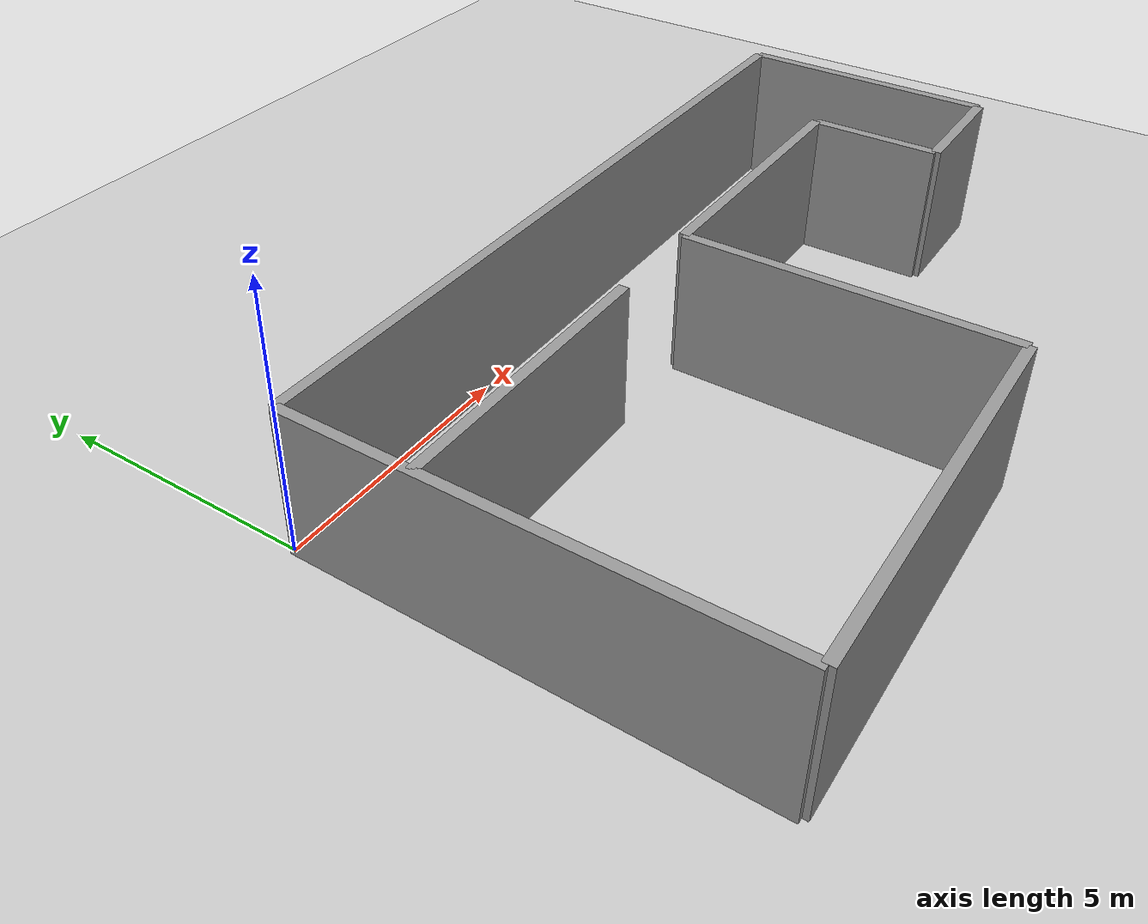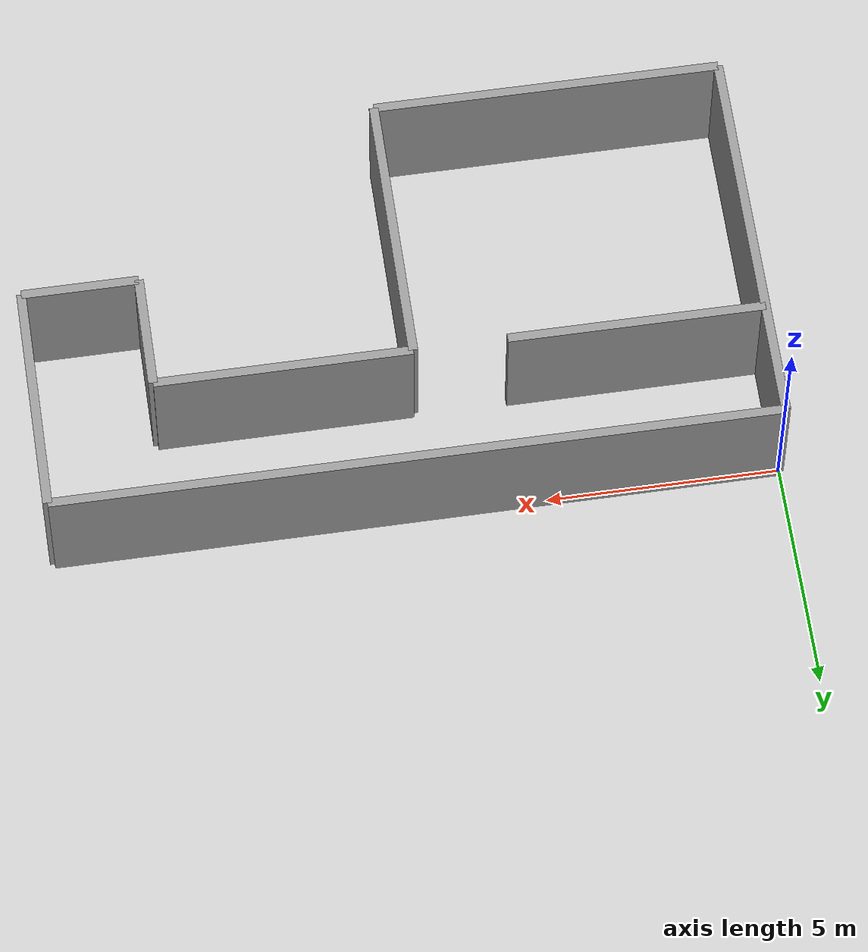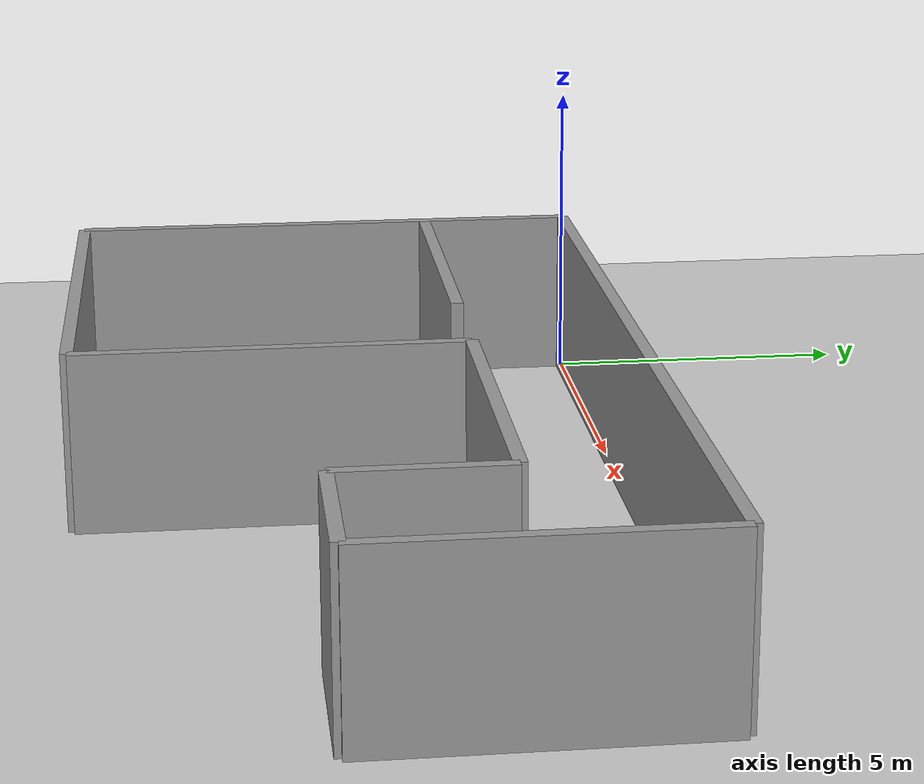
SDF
<?xml version="1.0" ?>

    <!-- this file is auto generated using pedsim_gazebo_plugin pkg -->
    <sdf version="1.5">
      <world name="default">

      <!-- Ground Plane -->

      <include>
        <uri>model://ground_plane</uri>
      </include>

      <include>
        <uri>model://sun</uri>
      </include>

     <model name='grey_wall_1'>
      <static>1</static>
      <link name='link'>

	  <pose frame=''>0.0 -4.25  1.4 0 0 1.57</pose>

        <collision name='collision'>
          <geometry>
            <box>

	     <size> 8.5 .2  2.8 </size>

      	   </box>
          </geometry>
          <max_contacts>10</max_contacts>
          <surface>
            <contact>
              <ode/>
            </contact>
            <bounce/>
            <friction>
              <torsional>
                <ode/>
              </torsional>
              <ode/>
            </friction>
          </surface>
        </collision>
        <visual name='visual'>
          <cast_shadows>0</cast_shadows>
          <geometry>
            <box>

	     <size> 8.5 .2  2.8 </size>

      	   </box>
       </geometry>
          <material>
            <script>
              <uri>model://grey_wall/materials/scripts</uri>
              <uri>model://grey_wall/materials/textures</uri>
              <name>vrc/grey_wall</name>
            </script>
          </material>
        </visual>
        <self_collide>0</self_collide>
        <enable_wind>0</enable_wind>
        <kinematic>0</kinematic>
      </link>
    </model>

     <model name='grey_wall_2'>
      <static>1</static>
      <link name='link'>

	  <pose frame=''>3.75 -8.5  1.4 0 0 0.0</pose>

        <collision name='collision'>
          <geometry>
            <box>

	     <size> 7.5 .2  2.8 </size>

      	   </box>
          </geometry>
          <max_contacts>10</max_contacts>
          <surface>
            <contact>
              <ode/>
            </contact>
            <bounce/>
            <friction>
              <torsional>
                <ode/>
              </torsional>
              <ode/>
            </friction>
          </surface>
        </collision>
        <visual name='visual'>
          <cast_shadows>0</cast_shadows>
          <geometry>
            <box>

	     <size> 7.5 .2  2.8 </size>

      	   </box>
       </geometry>
          <material>
            <script>
              <uri>model://grey_wall/materials/scripts</uri>
              <uri>model://grey_wall/materials/textures</uri>
              <name>vrc/grey_wall</name>
            </script>
          </material>
        </visual>
        <self_collide>0</self_collide>
        <enable_wind>0</enable_wind>
        <kinematic>0</kinematic>
      </link>
    </model>

     <model name='grey_wall_3'>
      <static>1</static>
      <link name='link'>

	  <pose frame=''>7.5 -5.5  1.4 0 0 1.57</pose>

        <collision name='collision'>
          <geometry>
            <box>

	     <size> 6.0 .2  2.8 </size>

      	   </box>
          </geometry>
          <max_contacts>10</max_contacts>
          <surface>
            <contact>
              <ode/>
            </contact>
            <bounce/>
            <friction>
              <torsional>
                <ode/>
              </torsional>
              <ode/>
            </friction>
          </surface>
        </collision>
        <visual name='visual'>
          <cast_shadows>0</cast_shadows>
          <geometry>
            <box>

	     <size> 6.0 .2  2.8 </size>

      	   </box>
       </geometry>
          <material>
            <script>
              <uri>model://grey_wall/materials/scripts</uri>
              <uri>model://grey_wall/materials/textures</uri>
              <name>vrc/grey_wall</name>
            </script>
          </material>
        </visual>
        <self_collide>0</self_collide>
        <enable_wind>0</enable_wind>
        <kinematic>0</kinematic>
      </link>
    </model>

     <model name='grey_wall_4'>
      <static>1</static>
      <link name='link'>

	  <pose frame=''>10.25 -2.5  1.4 0 0 0.0</pose>

        <collision name='collision'>
          <geometry>
            <box>

	     <size> 5.5 .2  2.8 </size>

      	   </box>
          </geometry>
          <max_contacts>10</max_contacts>
          <surface>
            <contact>
              <ode/>
            </contact>
            <bounce/>
            <friction>
              <torsional>
                <ode/>
              </torsional>
              <ode/>
            </friction>
          </surface>
        </collision>
        <visual name='visual'>
          <cast_shadows>0</cast_shadows>
          <geometry>
            <box>

	     <size> 5.5 .2  2.8 </size>

      	   </box>
       </geometry>
          <material>
            <script>
              <uri>model://grey_wall/materials/scripts</uri>
              <uri>model://grey_wall/materials/textures</uri>
              <name>vrc/grey_wall</name>
            </script>
          </material>
        </visual>
        <self_collide>0</self_collide>
        <enable_wind>0</enable_wind>
        <kinematic>0</kinematic>
      </link>
    </model>

     <model name='grey_wall_5'>
      <static>1</static>
      <link name='link'>

	  <pose frame=''>13.0 -3.75  1.4 0 0 1.57</pose>

        <collision name='collision'>
          <geometry>
            <box>

	     <size> 2.5 .2  2.8 </size>

      	   </box>
          </geometry>
          <max_contacts>10</max_contacts>
          <surface>
            <contact>
              <ode/>
            </contact>
            <bounce/>
            <friction>
              <torsional>
                <ode/>
              </torsional>
              <ode/>
            </friction>
          </surface>
        </collision>
        <visual name='visual'>
          <cast_shadows>0</cast_shadows>
          <geometry>
            <box>

	     <size> 2.5 .2  2.8 </size>

      	   </box>
       </geometry>
          <material>
            <script>
              <uri>model://grey_wall/materials/scripts</uri>
              <uri>model://grey_wall/materials/textures</uri>
              <name>vrc/grey_wall</name>
            </script>
          </material>
        </visual>
        <self_collide>0</self_collide>
        <enable_wind>0</enable_wind>
        <kinematic>0</kinematic>
      </link>
    </model>

     <model name='grey_wall_6'>
      <static>1</static>
      <link name='link'>

	  <pose frame=''>14.25 -5.0  1.4 0 0 0.0</pose>

        <collision name='collision'>
          <geometry>
            <box>

	     <size> 2.5 .2  2.8 </size>

      	   </box>
          </geometry>
          <max_contacts>10</max_contacts>
          <surface>
            <contact>
              <ode/>
            </contact>
            <bounce/>
            <friction>
              <torsional>
                <ode/>
              </torsional>
              <ode/>
            </friction>
          </surface>
        </collision>
        <visual name='visual'>
          <cast_shadows>0</cast_shadows>
          <geometry>
            <box>

	     <size> 2.5 .2  2.8 </size>

      	   </box>
       </geometry>
          <material>
            <script>
              <uri>model://grey_wall/materials/scripts</uri>
              <uri>model://grey_wall/materials/textures</uri>
              <name>vrc/grey_wall</name>
            </script>
          </material>
        </visual>
        <self_collide>0</self_collide>
        <enable_wind>0</enable_wind>
        <kinematic>0</kinematic>
      </link>
    </model>

     <model name='grey_wall_7'>
      <static>1</static>
      <link name='link'>

	  <pose frame=''>15.5 -2.5  1.4 0 0 1.57</pose>

        <collision name='collision'>
          <geometry>
            <box>

	     <size> 5.0 .2  2.8 </size>

      	   </box>
          </geometry>
          <max_contacts>10</max_contacts>
          <surface>
            <contact>
              <ode/>
            </contact>
            <bounce/>
            <friction>
              <torsional>
                <ode/>
              </torsional>
              <ode/>
            </friction>
          </surface>
        </collision>
        <visual name='visual'>
          <cast_shadows>0</cast_shadows>
          <geometry>
            <box>

	     <size> 5.0 .2  2.8 </size>

      	   </box>
       </geometry>
          <material>
            <script>
              <uri>model://grey_wall/materials/scripts</uri>
              <uri>model://grey_wall/materials/textures</uri>
              <name>vrc/grey_wall</name>
            </script>
          </material>
        </visual>
        <self_collide>0</self_collide>
        <enable_wind>0</enable_wind>
        <kinematic>0</kinematic>
      </link>
    </model>

     <model name='grey_wall_8'>
      <static>1</static>
      <link name='link'>

	  <pose frame=''>7.75 0.0  1.4 0 0 -0.0</pose>

        <collision name='collision'>
          <geometry>
            <box>

	     <size> 15.5 .2  2.8 </size>

      	   </box>
          </geometry>
          <max_contacts>10</max_contacts>
          <surface>
            <contact>
              <ode/>
            </contact>
            <bounce/>
            <friction>
              <torsional>
                <ode/>
              </torsional>
              <ode/>
            </friction>
          </surface>
        </collision>
        <visual name='visual'>
          <cast_shadows>0</cast_shadows>
          <geometry>
            <box>

	     <size> 15.5 .2  2.8 </size>

      	   </box>
       </geometry>
          <material>
            <script>
              <uri>model://grey_wall/materials/scripts</uri>
              <uri>model://grey_wall/materials/textures</uri>
              <name>vrc/grey_wall</name>
            </script>
          </material>
        </visual>
        <self_collide>0</self_collide>
        <enable_wind>0</enable_wind>
        <kinematic>0</kinematic>
      </link>
    </model>

     <model name='grey_wall_9'>
      <static>1</static>
      <link name='link'>

	  <pose frame=''>2.75 -2.5  1.4 0 0 0.0</pose>

        <collision name='collision'>
          <geometry>
            <box>

	     <size> 5.5 .2  2.8 </size>

      	   </box>
          </geometry>
          <max_contacts>10</max_contacts>
          <surface>
            <contact>
              <ode/>
            </contact>
            <bounce/>
            <friction>
              <torsional>
                <ode/>
              </torsional>
              <ode/>
            </friction>
          </surface>
        </collision>
        <visual name='visual'>
          <cast_shadows>0</cast_shadows>
          <geometry>
            <box>

	     <size> 5.5 .2  2.8 </size>

      	   </box>
       </geometry>
          <material>
            <script>
              <uri>model://grey_wall/materials/scripts</uri>
              <uri>model://grey_wall/materials/textures</uri>
              <name>vrc/grey_wall</name>
            </script>
          </material>
        </visual>
        <self_collide>0</self_collide>
        <enable_wind>0</enable_wind>
        <kinematic>0</kinematic>
      </link>
    </model>

            <plugin name="ActorPosesPlugin" filename="libActorPosesPlugin.dylib">
        </plugin>

      </world>
    </sdf>
